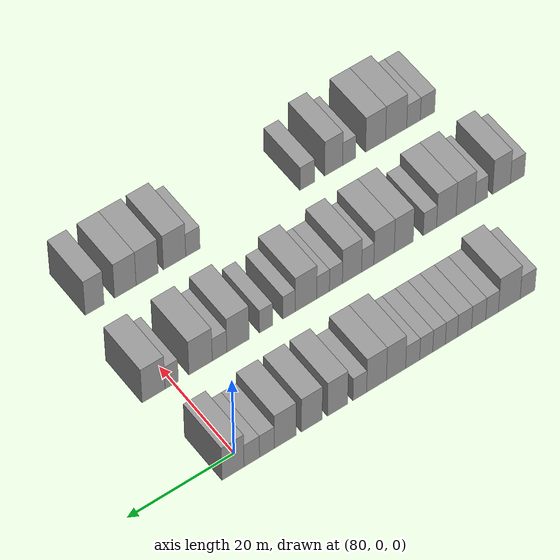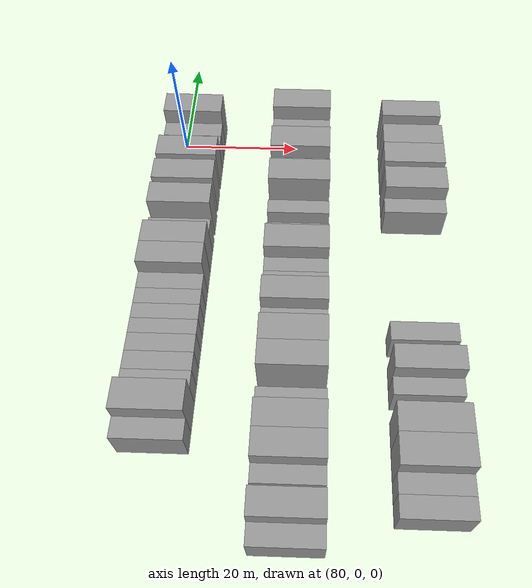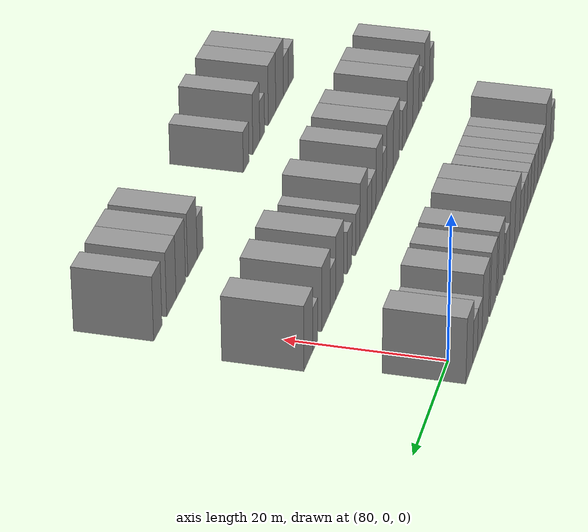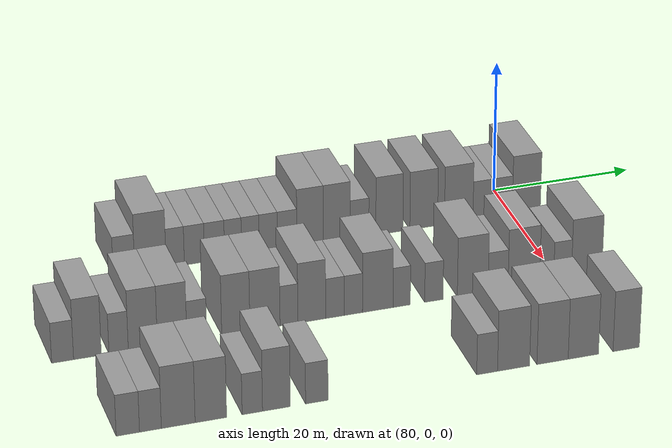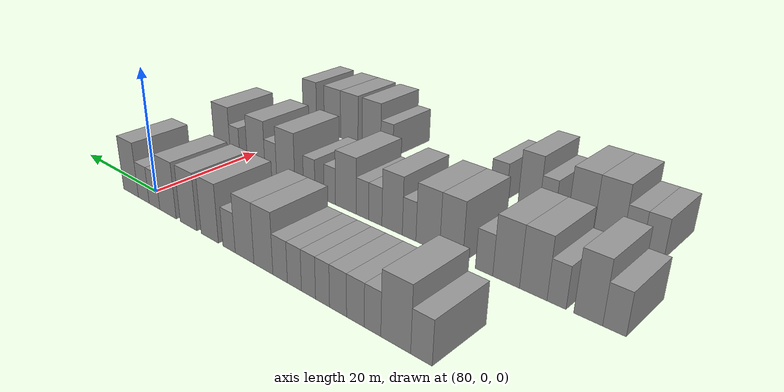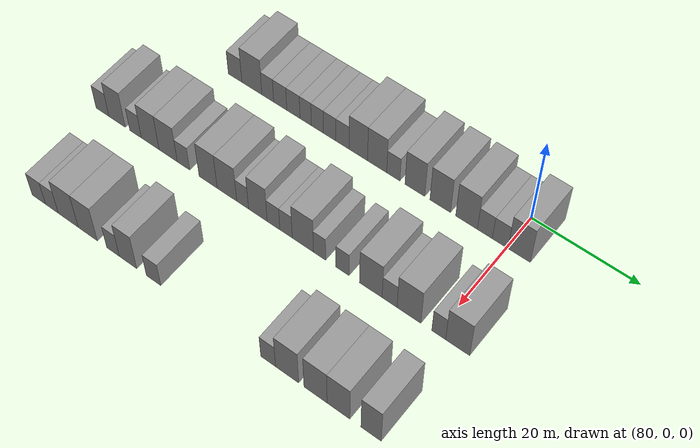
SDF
<sdf version="1.6">
 <world name="default">
  <model name="building_596">
   <static>1</static>
   <pose>82.0000 -55.1940 0 0.000000 0.000000 0.000000</pose>
   <link name="link">
    <pose>0 0 3.00 0 0 0</pose>
    <collision name="collision"><geometry><box><size>10.0000 2.9802 6.0000</size></box></geometry></collision>
    <visual name="visual">
     <cast_shadows>0</cast_shadows>
     <geometry><box><size>10.0000 2.9802 6.0000</size></box></geometry>
     <material>
      <script>
       <uri>model://grey_wall/materials/scripts</uri>
       <uri>model://grey_wall/materials/textures</uri>
       <name>vrc/grey_wall</name>
      </script>
     </material>
    </visual>
   </link>
  </model>
  <model name="building_597">
   <static>1</static>
   <pose>82.0000 -51.5275 0 0.000000 0.000000 0.000000</pose>
   <link name="link">
    <pose>0 0 4.50 0 0 0</pose>
    <collision name="collision"><geometry><box><size>10.0000 4.3529 9.0000</size></box></geometry></collision>
    <visual name="visual">
     <cast_shadows>0</cast_shadows>
     <geometry><box><size>10.0000 4.3529 9.0000</size></box></geometry>
     <material>
      <script>
       <uri>model://grey_wall/materials/scripts</uri>
       <uri>model://grey_wall/materials/textures</uri>
       <name>vrc/grey_wall</name>
      </script>
     </material>
    </visual>
   </link>
  </model>
  <model name="building_598">
   <static>1</static>
   <pose>82.0000 -48.0804 0 0.000000 0.000000 0.000000</pose>
   <link name="link">
    <pose>0 0 3.00 0 0 0</pose>
    <collision name="collision"><geometry><box><size>10.0000 2.5413 6.0000</size></box></geometry></collision>
    <visual name="visual">
     <cast_shadows>0</cast_shadows>
     <geometry><box><size>10.0000 2.5413 6.0000</size></box></geometry>
     <material>
      <script>
       <uri>model://grey_wall/materials/scripts</uri>
       <uri>model://grey_wall/materials/textures</uri>
       <name>vrc/grey_wall</name>
      </script>
     </material>
    </visual>
   </link>
  </model>
  <model name="building_599">
   <static>1</static>
   <pose>82.0000 -45.4038 0 0.000000 0.000000 0.000000</pose>
   <link name="link">
    <pose>0 0 3.00 0 0 0</pose>
    <collision name="collision"><geometry><box><size>10.0000 2.8120 6.0000</size></box></geometry></collision>
    <visual name="visual">
     <cast_shadows>0</cast_shadows>
     <geometry><box><size>10.0000 2.8120 6.0000</size></box></geometry>
     <material>
      <script>
       <uri>model://grey_wall/materials/scripts</uri>
       <uri>model://grey_wall/materials/textures</uri>
       <name>vrc/grey_wall</name>
      </script>
     </material>
    </visual>
   </link>
  </model>
  <model name="building_600">
   <static>1</static>
   <pose>82.0000 -42.5910 0 0.000000 0.000000 0.000000</pose>
   <link name="link">
    <pose>0 0 3.00 0 0 0</pose>
    <collision name="collision"><geometry><box><size>10.0000 2.8135 6.0000</size></box></geometry></collision>
    <visual name="visual">
     <cast_shadows>0</cast_shadows>
     <geometry><box><size>10.0000 2.8135 6.0000</size></box></geometry>
     <material>
      <script>
       <uri>model://grey_wall/materials/scripts</uri>
       <uri>model://grey_wall/materials/textures</uri>
       <name>vrc/grey_wall</name>
      </script>
     </material>
    </visual>
   </link>
  </model>
  <model name="building_601">
   <static>1</static>
   <pose>82.0000 -39.9831 0 0.000000 0.000000 0.000000</pose>
   <link name="link">
    <pose>0 0 3.00 0 0 0</pose>
    <collision name="collision"><geometry><box><size>10.0000 2.4023 6.0000</size></box></geometry></collision>
    <visual name="visual">
     <cast_shadows>0</cast_shadows>
     <geometry><box><size>10.0000 2.4023 6.0000</size></box></geometry>
     <material>
      <script>
       <uri>model://grey_wall/materials/scripts</uri>
       <uri>model://grey_wall/materials/textures</uri>
       <name>vrc/grey_wall</name>
      </script>
     </material>
    </visual>
   </link>
  </model>
  <model name="building_602">
   <static>1</static>
   <pose>82.0000 -37.5364 0 0.000000 0.000000 0.000000</pose>
   <link name="link">
    <pose>0 0 3.00 0 0 0</pose>
    <collision name="collision"><geometry><box><size>10.0000 2.4911 6.0000</size></box></geometry></collision>
    <visual name="visual">
     <cast_shadows>0</cast_shadows>
     <geometry><box><size>10.0000 2.4911 6.0000</size></box></geometry>
     <material>
      <script>
       <uri>model://grey_wall/materials/scripts</uri>
       <uri>model://grey_wall/materials/textures</uri>
       <name>vrc/grey_wall</name>
      </script>
     </material>
    </visual>
   </link>
  </model>
  <model name="building_603">
   <static>1</static>
   <pose>82.0000 -35.0027 0 0.000000 0.000000 0.000000</pose>
   <link name="link">
    <pose>0 0 3.00 0 0 0</pose>
    <collision name="collision"><geometry><box><size>10.0000 2.5762 6.0000</size></box></geometry></collision>
    <visual name="visual">
     <cast_shadows>0</cast_shadows>
     <geometry><box><size>10.0000 2.5762 6.0000</size></box></geometry>
     <material>
      <script>
       <uri>model://grey_wall/materials/scripts</uri>
       <uri>model://grey_wall/materials/textures</uri>
       <name>vrc/grey_wall</name>
      </script>
     </material>
    </visual>
   </link>
  </model>
  <model name="building_604">
   <static>1</static>
   <pose>82.0000 -32.3365 0 0.000000 0.000000 0.000000</pose>
   <link name="link">
    <pose>0 0 3.00 0 0 0</pose>
    <collision name="collision"><geometry><box><size>10.0000 2.7563 6.0000</size></box></geometry></collision>
    <visual name="visual">
     <cast_shadows>0</cast_shadows>
     <geometry><box><size>10.0000 2.7563 6.0000</size></box></geometry>
     <material>
      <script>
       <uri>model://grey_wall/materials/scripts</uri>
       <uri>model://grey_wall/materials/textures</uri>
       <name>vrc/grey_wall</name>
      </script>
     </material>
    </visual>
   </link>
  </model>
  <model name="building_605">
   <static>1</static>
   <pose>82.0000 -29.0839 0 0.000000 0.000000 0.000000</pose>
   <link name="link">
    <pose>0 0 4.50 0 0 0</pose>
    <collision name="collision"><geometry><box><size>10.0000 3.7489 9.0000</size></box></geometry></collision>
    <visual name="visual">
     <cast_shadows>0</cast_shadows>
     <geometry><box><size>10.0000 3.7489 9.0000</size></box></geometry>
     <material>
      <script>
       <uri>model://grey_wall/materials/scripts</uri>
       <uri>model://grey_wall/materials/textures</uri>
       <name>vrc/grey_wall</name>
      </script>
     </material>
    </visual>
   </link>
  </model>
  <model name="building_606">
   <static>1</static>
   <pose>82.0000 -25.2706 0 0.000000 0.000000 0.000000</pose>
   <link name="link">
    <pose>0 0 4.50 0 0 0</pose>
    <collision name="collision"><geometry><box><size>10.0000 3.8776 9.0000</size></box></geometry></collision>
    <visual name="visual">
     <cast_shadows>0</cast_shadows>
     <geometry><box><size>10.0000 3.8776 9.0000</size></box></geometry>
     <material>
      <script>
       <uri>model://grey_wall/materials/scripts</uri>
       <uri>model://grey_wall/materials/textures</uri>
       <name>vrc/grey_wall</name>
      </script>
     </material>
    </visual>
   </link>
  </model>
  <model name="building_607">
   <static>1</static>
   <pose>82.0000 -22.0032 0 0.000000 0.000000 0.000000</pose>
   <link name="link">
    <pose>0 0 3.00 0 0 0</pose>
    <collision name="collision"><geometry><box><size>10.0000 2.6571 6.0000</size></box></geometry></collision>
    <visual name="visual">
     <cast_shadows>0</cast_shadows>
     <geometry><box><size>10.0000 2.6571 6.0000</size></box></geometry>
     <material>
      <script>
       <uri>model://grey_wall/materials/scripts</uri>
       <uri>model://grey_wall/materials/textures</uri>
       <name>vrc/grey_wall</name>
      </script>
     </material>
    </visual>
   </link>
  </model>
  <model name="building_608">
   <static>1</static>
   <pose>82.0000 -17.7156 0 0.000000 0.000000 0.000000</pose>
   <link name="link">
    <pose>0 0 4.50 0 0 0</pose>
    <collision name="collision"><geometry><box><size>10.0000 3.9182 9.0000</size></box></geometry></collision>
    <visual name="visual">
     <cast_shadows>0</cast_shadows>
     <geometry><box><size>10.0000 3.9182 9.0000</size></box></geometry>
     <material>
      <script>
       <uri>model://grey_wall/materials/scripts</uri>
       <uri>model://grey_wall/materials/textures</uri>
       <name>vrc/grey_wall</name>
      </script>
     </material>
    </visual>
   </link>
  </model>
  <model name="building_609">
   <static>1</static>
   <pose>82.0000 -12.7474 0 0.000000 0.000000 0.000000</pose>
   <link name="link">
    <pose>0 0 4.50 0 0 0</pose>
    <collision name="collision"><geometry><box><size>10.0000 4.0182 9.0000</size></box></geometry></collision>
    <visual name="visual">
     <cast_shadows>0</cast_shadows>
     <geometry><box><size>10.0000 4.0182 9.0000</size></box></geometry>
     <material>
      <script>
       <uri>model://grey_wall/materials/scripts</uri>
       <uri>model://grey_wall/materials/textures</uri>
       <name>vrc/grey_wall</name>
      </script>
     </material>
    </visual>
   </link>
  </model>
  <model name="building_610">
   <static>1</static>
   <pose>82.0000 -7.6578 0 0.000000 0.000000 0.000000</pose>
   <link name="link">
    <pose>0 0 4.50 0 0 0</pose>
    <collision name="collision"><geometry><box><size>10.0000 4.1610 9.0000</size></box></geometry></collision>
    <visual name="visual">
     <cast_shadows>0</cast_shadows>
     <geometry><box><size>10.0000 4.1610 9.0000</size></box></geometry>
     <material>
      <script>
       <uri>model://grey_wall/materials/scripts</uri>
       <uri>model://grey_wall/materials/textures</uri>
       <name>vrc/grey_wall</name>
      </script>
     </material>
    </visual>
   </link>
  </model>
  <model name="building_611">
   <static>1</static>
   <pose>82.0000 -4.1638 0 0.000000 0.000000 0.000000</pose>
   <link name="link">
    <pose>0 0 3.00 0 0 0</pose>
    <collision name="collision"><geometry><box><size>10.0000 2.8270 6.0000</size></box></geometry></collision>
    <visual name="visual">
     <cast_shadows>0</cast_shadows>
     <geometry><box><size>10.0000 2.8270 6.0000</size></box></geometry>
     <material>
      <script>
       <uri>model://grey_wall/materials/scripts</uri>
       <uri>model://grey_wall/materials/textures</uri>
       <name>vrc/grey_wall</name>
      </script>
     </material>
    </visual>
   </link>
  </model>
  <model name="building_612">
   <static>1</static>
   <pose>82.0000 -1.2792 0 0.000000 0.000000 0.000000</pose>
   <link name="link">
    <pose>0 0 3.00 0 0 0</pose>
    <collision name="collision"><geometry><box><size>10.0000 2.9424 6.0000</size></box></geometry></collision>
    <visual name="visual">
     <cast_shadows>0</cast_shadows>
     <geometry><box><size>10.0000 2.9424 6.0000</size></box></geometry>
     <material>
      <script>
       <uri>model://grey_wall/materials/scripts</uri>
       <uri>model://grey_wall/materials/textures</uri>
       <name>vrc/grey_wall</name>
      </script>
     </material>
    </visual>
   </link>
  </model>
  <model name="building_613">
   <static>1</static>
   <pose>82.0000 2.2743 0 0.000000 0.000000 0.000000</pose>
   <link name="link">
    <pose>0 0 4.50 0 0 0</pose>
    <collision name="collision"><geometry><box><size>10.0000 4.1646 9.0000</size></box></geometry></collision>
    <visual name="visual">
     <cast_shadows>0</cast_shadows>
     <geometry><box><size>10.0000 4.1646 9.0000</size></box></geometry>
     <material>
      <script>
       <uri>model://grey_wall/materials/scripts</uri>
       <uri>model://grey_wall/materials/textures</uri>
       <name>vrc/grey_wall</name>
      </script>
     </material>
    </visual>
   </link>
  </model>
  <model name="building_773">
   <static>1</static>
   <pose>101.0000 -67.9836 0 0.000000 0.000000 0.000000</pose>
   <link name="link">
    <pose>0 0 3.00 0 0 0</pose>
    <collision name="collision"><geometry><box><size>10.0000 2.8769 6.0000</size></box></geometry></collision>
    <visual name="visual">
     <cast_shadows>0</cast_shadows>
     <geometry><box><size>10.0000 2.8769 6.0000</size></box></geometry>
     <material>
      <script>
       <uri>model://grey_wall/materials/scripts</uri>
       <uri>model://grey_wall/materials/textures</uri>
       <name>vrc/grey_wall</name>
      </script>
     </material>
    </visual>
   </link>
  </model>
  <model name="building_774">
   <static>1</static>
   <pose>101.0000 -64.7111 0 0.000000 0.000000 0.000000</pose>
   <link name="link">
    <pose>0 0 4.50 0 0 0</pose>
    <collision name="collision"><geometry><box><size>10.0000 3.6681 9.0000</size></box></geometry></collision>
    <visual name="visual">
     <cast_shadows>0</cast_shadows>
     <geometry><box><size>10.0000 3.6681 9.0000</size></box></geometry>
     <material>
      <script>
       <uri>model://grey_wall/materials/scripts</uri>
       <uri>model://grey_wall/materials/textures</uri>
       <name>vrc/grey_wall</name>
      </script>
     </material>
    </visual>
   </link>
  </model>
  <model name="building_775">
   <static>1</static>
   <pose>101.0000 -60.5958 0 0.000000 0.000000 0.000000</pose>
   <link name="link">
    <pose>0 0 3.00 0 0 0</pose>
    <collision name="collision"><geometry><box><size>10.0000 2.5626 6.0000</size></box></geometry></collision>
    <visual name="visual">
     <cast_shadows>0</cast_shadows>
     <geometry><box><size>10.0000 2.5626 6.0000</size></box></geometry>
     <material>
      <script>
       <uri>model://grey_wall/materials/scripts</uri>
       <uri>model://grey_wall/materials/textures</uri>
       <name>vrc/grey_wall</name>
      </script>
     </material>
    </visual>
   </link>
  </model>
  <model name="building_776">
   <static>1</static>
   <pose>101.0000 -57.3797 0 0.000000 0.000000 0.000000</pose>
   <link name="link">
    <pose>0 0 4.50 0 0 0</pose>
    <collision name="collision"><geometry><box><size>10.0000 3.8697 9.0000</size></box></geometry></collision>
    <visual name="visual">
     <cast_shadows>0</cast_shadows>
     <geometry><box><size>10.0000 3.8697 9.0000</size></box></geometry>
     <material>
      <script>
       <uri>model://grey_wall/materials/scripts</uri>
       <uri>model://grey_wall/materials/textures</uri>
       <name>vrc/grey_wall</name>
      </script>
     </material>
    </visual>
   </link>
  </model>
  <model name="building_777">
   <static>1</static>
   <pose>101.0000 -53.4738 0 0.000000 0.000000 0.000000</pose>
   <link name="link">
    <pose>0 0 4.50 0 0 0</pose>
    <collision name="collision"><geometry><box><size>10.0000 3.9419 9.0000</size></box></geometry></collision>
    <visual name="visual">
     <cast_shadows>0</cast_shadows>
     <geometry><box><size>10.0000 3.9419 9.0000</size></box></geometry>
     <material>
      <script>
       <uri>model://grey_wall/materials/scripts</uri>
       <uri>model://grey_wall/materials/textures</uri>
       <name>vrc/grey_wall</name>
      </script>
     </material>
    </visual>
   </link>
  </model>
  <model name="building_778">
   <static>1</static>
   <pose>101.0000 -50.1615 0 0.000000 0.000000 0.000000</pose>
   <link name="link">
    <pose>0 0 3.00 0 0 0</pose>
    <collision name="collision"><geometry><box><size>10.0000 2.6828 6.0000</size></box></geometry></collision>
    <visual name="visual">
     <cast_shadows>0</cast_shadows>
     <geometry><box><size>10.0000 2.6828 6.0000</size></box></geometry>
     <material>
      <script>
       <uri>model://grey_wall/materials/scripts</uri>
       <uri>model://grey_wall/materials/textures</uri>
       <name>vrc/grey_wall</name>
      </script>
     </material>
    </visual>
   </link>
  </model>
  <model name="building_779">
   <static>1</static>
   <pose>101.0000 -44.9124 0 0.000000 0.000000 0.000000</pose>
   <link name="link">
    <pose>0 0 4.50 0 0 0</pose>
    <collision name="collision"><geometry><box><size>10.0000 3.8153 9.0000</size></box></geometry></collision>
    <visual name="visual">
     <cast_shadows>0</cast_shadows>
     <geometry><box><size>10.0000 3.8153 9.0000</size></box></geometry>
     <material>
      <script>
       <uri>model://grey_wall/materials/scripts</uri>
       <uri>model://grey_wall/materials/textures</uri>
       <name>vrc/grey_wall</name>
      </script>
     </material>
    </visual>
   </link>
  </model>
  <model name="building_780">
   <static>1</static>
   <pose>101.0000 -40.9618 0 0.000000 0.000000 0.000000</pose>
   <link name="link">
    <pose>0 0 4.50 0 0 0</pose>
    <collision name="collision"><geometry><box><size>10.0000 4.0858 9.0000</size></box></geometry></collision>
    <visual name="visual">
     <cast_shadows>0</cast_shadows>
     <geometry><box><size>10.0000 4.0858 9.0000</size></box></geometry>
     <material>
      <script>
       <uri>model://grey_wall/materials/scripts</uri>
       <uri>model://grey_wall/materials/textures</uri>
       <name>vrc/grey_wall</name>
      </script>
     </material>
    </visual>
   </link>
  </model>
  <model name="building_781">
   <static>1</static>
   <pose>101.0000 -37.7002 0 0.000000 0.000000 0.000000</pose>
   <link name="link">
    <pose>0 0 3.00 0 0 0</pose>
    <collision name="collision"><geometry><box><size>10.0000 2.4376 6.0000</size></box></geometry></collision>
    <visual name="visual">
     <cast_shadows>0</cast_shadows>
     <geometry><box><size>10.0000 2.4376 6.0000</size></box></geometry>
     <material>
      <script>
       <uri>model://grey_wall/materials/scripts</uri>
       <uri>model://grey_wall/materials/textures</uri>
       <name>vrc/grey_wall</name>
      </script>
     </material>
    </visual>
   </link>
  </model>
  <model name="building_782">
   <static>1</static>
   <pose>101.0000 -34.5794 0 0.000000 0.000000 0.000000</pose>
   <link name="link">
    <pose>0 0 4.50 0 0 0</pose>
    <collision name="collision"><geometry><box><size>10.0000 3.8040 9.0000</size></box></geometry></collision>
    <visual name="visual">
     <cast_shadows>0</cast_shadows>
     <geometry><box><size>10.0000 3.8040 9.0000</size></box></geometry>
     <material>
      <script>
       <uri>model://grey_wall/materials/scripts</uri>
       <uri>model://grey_wall/materials/textures</uri>
       <name>vrc/grey_wall</name>
      </script>
     </material>
    </visual>
   </link>
  </model>
  <model name="building_783">
   <static>1</static>
   <pose>101.0000 -31.3937 0 0.000000 0.000000 0.000000</pose>
   <link name="link">
    <pose>0 0 3.00 0 0 0</pose>
    <collision name="collision"><geometry><box><size>10.0000 2.5674 6.0000</size></box></geometry></collision>
    <visual name="visual">
     <cast_shadows>0</cast_shadows>
     <geometry><box><size>10.0000 2.5674 6.0000</size></box></geometry>
     <material>
      <script>
       <uri>model://grey_wall/materials/scripts</uri>
       <uri>model://grey_wall/materials/textures</uri>
       <name>vrc/grey_wall</name>
      </script>
     </material>
    </visual>
   </link>
  </model>
  <model name="building_784">
   <static>1</static>
   <pose>101.0000 -28.8646 0 0.000000 0.000000 0.000000</pose>
   <link name="link">
    <pose>0 0 3.00 0 0 0</pose>
    <collision name="collision"><geometry><box><size>10.0000 2.4909 6.0000</size></box></geometry></collision>
    <visual name="visual">
     <cast_shadows>0</cast_shadows>
     <geometry><box><size>10.0000 2.4909 6.0000</size></box></geometry>
     <material>
      <script>
       <uri>model://grey_wall/materials/scripts</uri>
       <uri>model://grey_wall/materials/textures</uri>
       <name>vrc/grey_wall</name>
      </script>
     </material>
    </visual>
   </link>
  </model>
  <model name="building_785">
   <static>1</static>
   <pose>101.0000 -25.5061 0 0.000000 0.000000 0.000000</pose>
   <link name="link">
    <pose>0 0 4.50 0 0 0</pose>
    <collision name="collision"><geometry><box><size>10.0000 4.2259 9.0000</size></box></geometry></collision>
    <visual name="visual">
     <cast_shadows>0</cast_shadows>
     <geometry><box><size>10.0000 4.2259 9.0000</size></box></geometry>
     <material>
      <script>
       <uri>model://grey_wall/materials/scripts</uri>
       <uri>model://grey_wall/materials/textures</uri>
       <name>vrc/grey_wall</name>
      </script>
     </material>
    </visual>
   </link>
  </model>
  <model name="building_786">
   <static>1</static>
   <pose>101.0000 -22.1874 0 0.000000 0.000000 0.000000</pose>
   <link name="link">
    <pose>0 0 3.00 0 0 0</pose>
    <collision name="collision"><geometry><box><size>10.0000 2.4116 6.0000</size></box></geometry></collision>
    <visual name="visual">
     <cast_shadows>0</cast_shadows>
     <geometry><box><size>10.0000 2.4116 6.0000</size></box></geometry>
     <material>
      <script>
       <uri>model://grey_wall/materials/scripts</uri>
       <uri>model://grey_wall/materials/textures</uri>
       <name>vrc/grey_wall</name>
      </script>
     </material>
    </visual>
   </link>
  </model>
  <model name="building_787">
   <static>1</static>
   <pose>101.0000 -17.7012 0 0.000000 0.000000 0.000000</pose>
   <link name="link">
    <pose>0 0 3.00 0 0 0</pose>
    <collision name="collision"><geometry><box><size>10.0000 2.5607 6.0000</size></box></geometry></collision>
    <visual name="visual">
     <cast_shadows>0</cast_shadows>
     <geometry><box><size>10.0000 2.5607 6.0000</size></box></geometry>
     <material>
      <script>
       <uri>model://grey_wall/materials/scripts</uri>
       <uri>model://grey_wall/materials/textures</uri>
       <name>vrc/grey_wall</name>
      </script>
     </material>
    </visual>
   </link>
  </model>
  <model name="building_788">
   <static>1</static>
   <pose>101.0000 -12.2558 0 0.000000 0.000000 0.000000</pose>
   <link name="link">
    <pose>0 0 4.50 0 0 0</pose>
    <collision name="collision"><geometry><box><size>10.0000 4.3301 9.0000</size></box></geometry></collision>
    <visual name="visual">
     <cast_shadows>0</cast_shadows>
     <geometry><box><size>10.0000 4.3301 9.0000</size></box></geometry>
     <material>
      <script>
       <uri>model://grey_wall/materials/scripts</uri>
       <uri>model://grey_wall/materials/textures</uri>
       <name>vrc/grey_wall</name>
      </script>
     </material>
    </visual>
   </link>
  </model>
  <model name="building_789">
   <static>1</static>
   <pose>101.0000 -8.6845 0 0.000000 0.000000 0.000000</pose>
   <link name="link">
    <pose>0 0 3.00 0 0 0</pose>
    <collision name="collision"><geometry><box><size>10.0000 2.8124 6.0000</size></box></geometry></collision>
    <visual name="visual">
     <cast_shadows>0</cast_shadows>
     <geometry><box><size>10.0000 2.8124 6.0000</size></box></geometry>
     <material>
      <script>
       <uri>model://grey_wall/materials/scripts</uri>
       <uri>model://grey_wall/materials/textures</uri>
       <name>vrc/grey_wall</name>
      </script>
     </material>
    </visual>
   </link>
  </model>
  <model name="building_790">
   <static>1</static>
   <pose>101.0000 -5.0381 0 0.000000 0.000000 0.000000</pose>
   <link name="link">
    <pose>0 0 4.50 0 0 0</pose>
    <collision name="collision"><geometry><box><size>10.0000 4.4805 9.0000</size></box></geometry></collision>
    <visual name="visual">
     <cast_shadows>0</cast_shadows>
     <geometry><box><size>10.0000 4.4805 9.0000</size></box></geometry>
     <material>
      <script>
       <uri>model://grey_wall/materials/scripts</uri>
       <uri>model://grey_wall/materials/textures</uri>
       <name>vrc/grey_wall</name>
      </script>
     </material>
    </visual>
   </link>
  </model>
  <model name="building_791">
   <static>1</static>
   <pose>101.0000 0.4718 0 0.000000 0.000000 0.000000</pose>
   <link name="link">
    <pose>0 0 3.00 0 0 0</pose>
    <collision name="collision"><geometry><box><size>10.0000 2.5393 6.0000</size></box></geometry></collision>
    <visual name="visual">
     <cast_shadows>0</cast_shadows>
     <geometry><box><size>10.0000 2.5393 6.0000</size></box></geometry>
     <material>
      <script>
       <uri>model://grey_wall/materials/scripts</uri>
       <uri>model://grey_wall/materials/textures</uri>
       <name>vrc/grey_wall</name>
      </script>
     </material>
    </visual>
   </link>
  </model>
  <model name="building_792">
   <static>1</static>
   <pose>101.0000 3.9350 0 0.000000 0.000000 0.000000</pose>
   <link name="link">
    <pose>0 0 4.50 0 0 0</pose>
    <collision name="collision"><geometry><box><size>10.0000 4.3871 9.0000</size></box></geometry></collision>
    <visual name="visual">
     <cast_shadows>0</cast_shadows>
     <geometry><box><size>10.0000 4.3871 9.0000</size></box></geometry>
     <material>
      <script>
       <uri>model://grey_wall/materials/scripts</uri>
       <uri>model://grey_wall/materials/textures</uri>
       <name>vrc/grey_wall</name>
      </script>
     </material>
    </visual>
   </link>
  </model>
  <model name="building_954">
   <static>1</static>
   <pose>120.0000 -64.0948 0 0.000000 0.000000 0.000000</pose>
   <link name="link">
    <pose>0 0 3.00 0 0 0</pose>
    <collision name="collision"><geometry><box><size>10.0000 2.9746 6.0000</size></box></geometry></collision>
    <visual name="visual">
     <cast_shadows>0</cast_shadows>
     <geometry><box><size>10.0000 2.9746 6.0000</size></box></geometry>
     <material>
      <script>
       <uri>model://grey_wall/materials/scripts</uri>
       <uri>model://grey_wall/materials/textures</uri>
       <name>vrc/grey_wall</name>
      </script>
     </material>
    </visual>
   </link>
  </model>
  <model name="building_955">
   <static>1</static>
   <pose>120.0000 -61.2118 0 0.000000 0.000000 0.000000</pose>
   <link name="link">
    <pose>0 0 3.00 0 0 0</pose>
    <collision name="collision"><geometry><box><size>10.0000 2.7914 6.0000</size></box></geometry></collision>
    <visual name="visual">
     <cast_shadows>0</cast_shadows>
     <geometry><box><size>10.0000 2.7914 6.0000</size></box></geometry>
     <material>
      <script>
       <uri>model://grey_wall/materials/scripts</uri>
       <uri>model://grey_wall/materials/textures</uri>
       <name>vrc/grey_wall</name>
      </script>
     </material>
    </visual>
   </link>
  </model>
  <model name="building_956">
   <static>1</static>
   <pose>120.0000 -57.6495 0 0.000000 0.000000 0.000000</pose>
   <link name="link">
    <pose>0 0 4.50 0 0 0</pose>
    <collision name="collision"><geometry><box><size>10.0000 4.3332 9.0000</size></box></geometry></collision>
    <visual name="visual">
     <cast_shadows>0</cast_shadows>
     <geometry><box><size>10.0000 4.3332 9.0000</size></box></geometry>
     <material>
      <script>
       <uri>model://grey_wall/materials/scripts</uri>
       <uri>model://grey_wall/materials/textures</uri>
       <name>vrc/grey_wall</name>
      </script>
     </material>
    </visual>
   </link>
  </model>
  <model name="building_957">
   <static>1</static>
   <pose>120.0000 -53.4440 0 0.000000 0.000000 0.000000</pose>
   <link name="link">
    <pose>0 0 4.50 0 0 0</pose>
    <collision name="collision"><geometry><box><size>10.0000 4.0777 9.0000</size></box></geometry></collision>
    <visual name="visual">
     <cast_shadows>0</cast_shadows>
     <geometry><box><size>10.0000 4.0777 9.0000</size></box></geometry>
     <material>
      <script>
       <uri>model://grey_wall/materials/scripts</uri>
       <uri>model://grey_wall/materials/textures</uri>
       <name>vrc/grey_wall</name>
      </script>
     </material>
    </visual>
   </link>
  </model>
  <model name="building_958">
   <static>1</static>
   <pose>120.0000 -48.0818 0 0.000000 0.000000 0.000000</pose>
   <link name="link">
    <pose>0 0 3.00 0 0 0</pose>
    <collision name="collision"><geometry><box><size>10.0000 2.6466 6.0000</size></box></geometry></collision>
    <visual name="visual">
     <cast_shadows>0</cast_shadows>
     <geometry><box><size>10.0000 2.6466 6.0000</size></box></geometry>
     <material>
      <script>
       <uri>model://grey_wall/materials/scripts</uri>
       <uri>model://grey_wall/materials/textures</uri>
       <name>vrc/grey_wall</name>
      </script>
     </material>
    </visual>
   </link>
  </model>
  <model name="building_959">
   <static>1</static>
   <pose>120.0000 -44.9454 0 0.000000 0.000000 0.000000</pose>
   <link name="link">
    <pose>0 0 4.50 0 0 0</pose>
    <collision name="collision"><geometry><box><size>10.0000 3.6262 9.0000</size></box></geometry></collision>
    <visual name="visual">
     <cast_shadows>0</cast_shadows>
     <geometry><box><size>10.0000 3.6262 9.0000</size></box></geometry>
     <material>
      <script>
       <uri>model://grey_wall/materials/scripts</uri>
       <uri>model://grey_wall/materials/textures</uri>
       <name>vrc/grey_wall</name>
      </script>
     </material>
    </visual>
   </link>
  </model>
  <model name="building_960">
   <static>1</static>
   <pose>120.0000 -39.6530 0 0.000000 0.000000 0.000000</pose>
   <link name="link">
    <pose>0 0 3.00 0 0 0</pose>
    <collision name="collision"><geometry><box><size>10.0000 2.9588 6.0000</size></box></geometry></collision>
    <visual name="visual">
     <cast_shadows>0</cast_shadows>
     <geometry><box><size>10.0000 2.9588 6.0000</size></box></geometry>
     <material>
      <script>
       <uri>model://grey_wall/materials/scripts</uri>
       <uri>model://grey_wall/materials/textures</uri>
       <name>vrc/grey_wall</name>
      </script>
     </material>
    </visual>
   </link>
  </model>
  <model name="building_961">
   <static>1</static>
   <pose>120.0000 -16.9588 0 0.000000 0.000000 0.000000</pose>
   <link name="link">
    <pose>0 0 3.00 0 0 0</pose>
    <collision name="collision"><geometry><box><size>10.0000 2.8099 6.0000</size></box></geometry></collision>
    <visual name="visual">
     <cast_shadows>0</cast_shadows>
     <geometry><box><size>10.0000 2.8099 6.0000</size></box></geometry>
     <material>
      <script>
       <uri>model://grey_wall/materials/scripts</uri>
       <uri>model://grey_wall/materials/textures</uri>
       <name>vrc/grey_wall</name>
      </script>
     </material>
    </visual>
   </link>
  </model>
  <model name="building_962">
   <static>1</static>
   <pose>120.0000 -13.3728 0 0.000000 0.000000 0.000000</pose>
   <link name="link">
    <pose>0 0 4.50 0 0 0</pose>
    <collision name="collision"><geometry><box><size>10.0000 4.3620 9.0000</size></box></geometry></collision>
    <visual name="visual">
     <cast_shadows>0</cast_shadows>
     <geometry><box><size>10.0000 4.3620 9.0000</size></box></geometry>
     <material>
      <script>
       <uri>model://grey_wall/materials/scripts</uri>
       <uri>model://grey_wall/materials/textures</uri>
       <name>vrc/grey_wall</name>
      </script>
     </material>
    </visual>
   </link>
  </model>
  <model name="building_963">
   <static>1</static>
   <pose>120.0000 -8.0521 0 0.000000 0.000000 0.000000</pose>
   <link name="link">
    <pose>0 0 4.50 0 0 0</pose>
    <collision name="collision"><geometry><box><size>10.0000 4.2794 9.0000</size></box></geometry></collision>
    <visual name="visual">
     <cast_shadows>0</cast_shadows>
     <geometry><box><size>10.0000 4.2794 9.0000</size></box></geometry>
     <material>
      <script>
       <uri>model://grey_wall/materials/scripts</uri>
       <uri>model://grey_wall/materials/textures</uri>
       <name>vrc/grey_wall</name>
      </script>
     </material>
    </visual>
   </link>
  </model>
  <model name="building_964">
   <static>1</static>
   <pose>120.0000 -3.8244 0 0.000000 0.000000 0.000000</pose>
   <link name="link">
    <pose>0 0 4.50 0 0 0</pose>
    <collision name="collision"><geometry><box><size>10.0000 4.1761 9.0000</size></box></geometry></collision>
    <visual name="visual">
     <cast_shadows>0</cast_shadows>
     <geometry><box><size>10.0000 4.1761 9.0000</size></box></geometry>
     <material>
      <script>
       <uri>model://grey_wall/materials/scripts</uri>
       <uri>model://grey_wall/materials/textures</uri>
       <name>vrc/grey_wall</name>
      </script>
     </material>
    </visual>
   </link>
  </model>
  <model name="building_965">
   <static>1</static>
   <pose>120.0000 2.0857 0 0.000000 0.000000 0.000000</pose>
   <link name="link">
    <pose>0 0 4.50 0 0 0</pose>
    <collision name="collision"><geometry><box><size>10.0000 3.6442 9.0000</size></box></geometry></collision>
    <visual name="visual">
     <cast_shadows>0</cast_shadows>
     <geometry><box><size>10.0000 3.6442 9.0000</size></box></geometry>
     <material>
      <script>
       <uri>model://grey_wall/materials/scripts</uri>
       <uri>model://grey_wall/materials/textures</uri>
       <name>vrc/grey_wall</name>
      </script>
     </material>
    </visual>
   </link>
  </model>
 </world>
</sdf>
